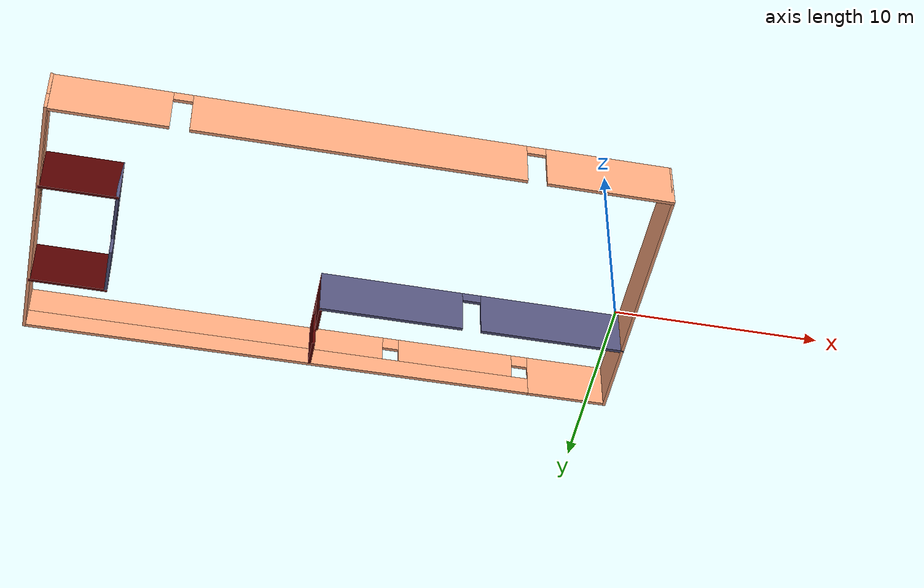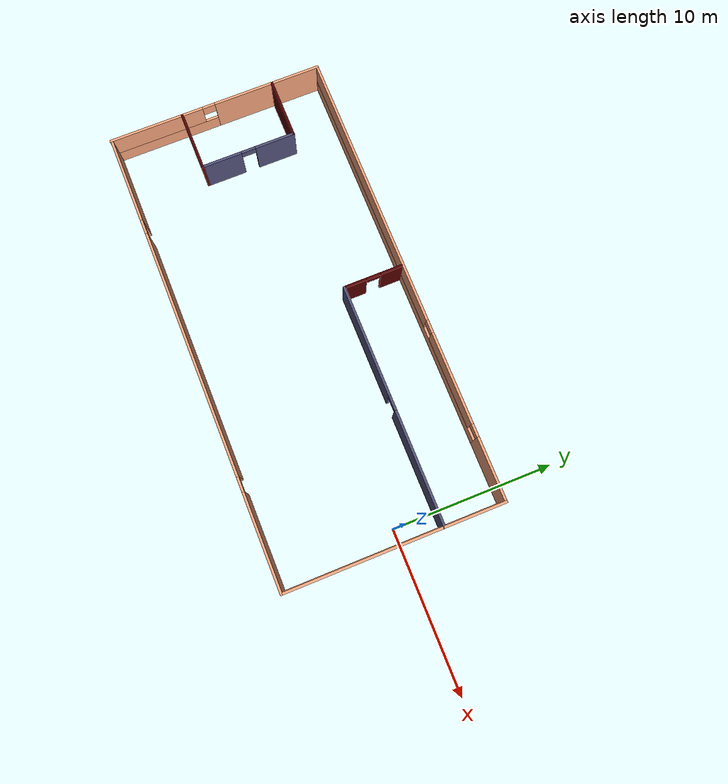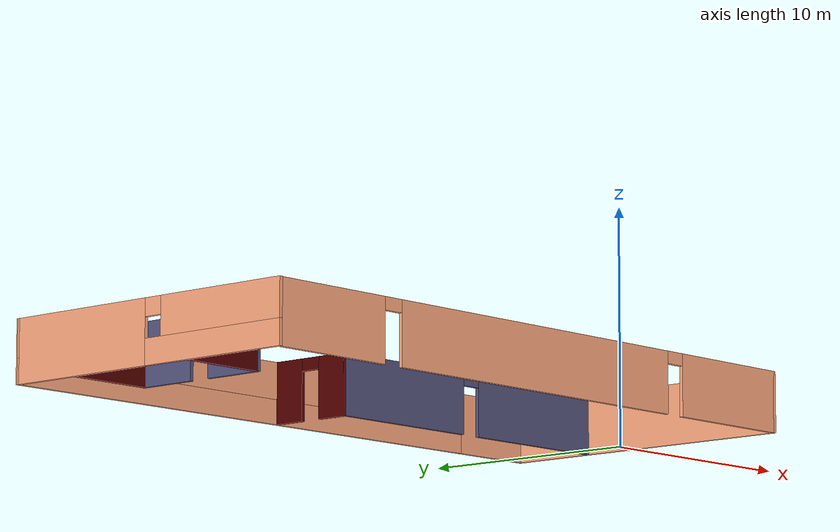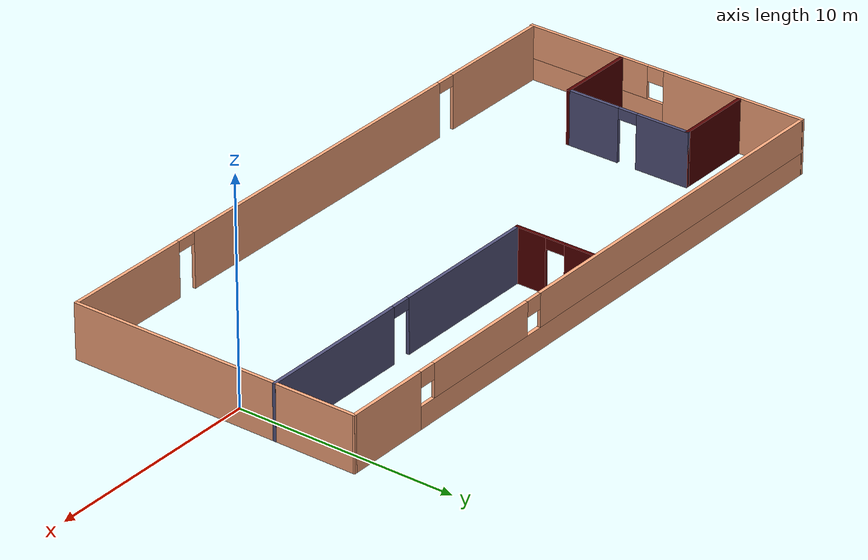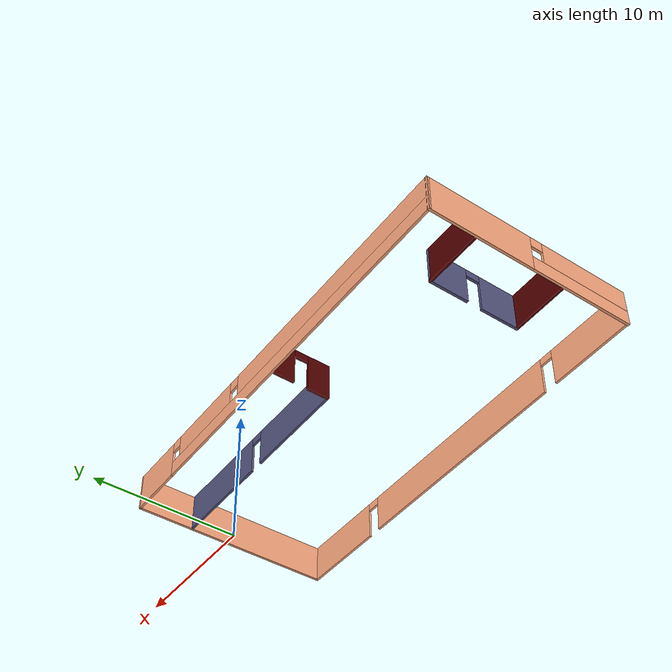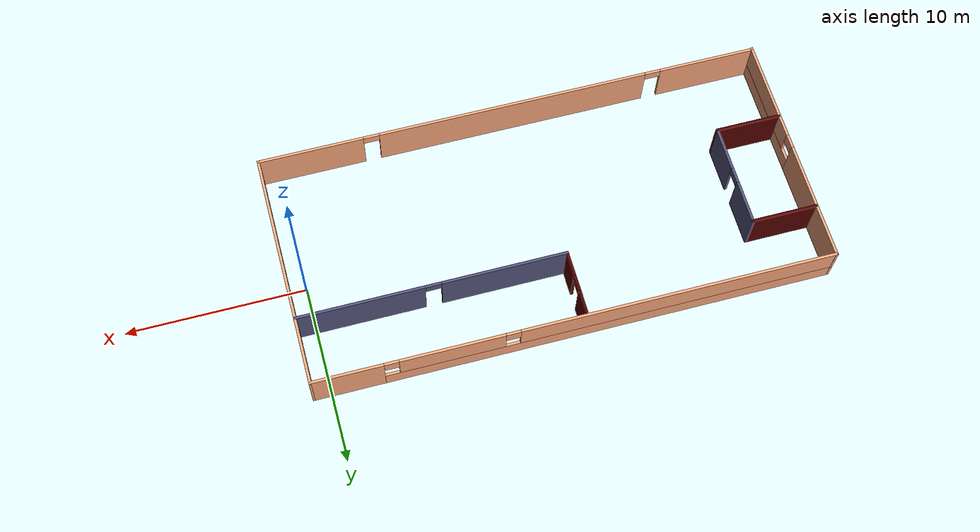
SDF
<?xml version='1.0'?>
<sdf version='1.6'>
  <model name='world'>
    <pose frame=''>-13.404 -0.44518 0 0 -0 0</pose>
    <link name='Wall_0'>
      <pose frame=''>-14.3658 -5.2e-05 0 0 0 -1.5708</pose>
      <visual name='Wall_0_Visual_0'>
        <pose frame=''>-3.37995 0 1.25 0 -0 0</pose>
        <geometry>
          <box>
            <size>6.82101 0.15 2.5</size>
          </box>
        </geometry>
        <material>
          <script>
            <uri>file://media/materials/scripts/gazebo.material</uri>
            <name>Gazebo/Grey</name>
          </script>
          <ambient>1 0.666667 0.498039 1</ambient>
        </material>
        <meta>
          <layer>0</layer>
        </meta>
      </visual>
      <collision name='Wall_0_Collision_0'>
        <geometry>
          <box>
            <size>6.82101 0.15 2.5</size>
          </box>
        </geometry>
        <pose frame=''>-3.37995 0 1.25 0 -0 0</pose>
      </collision>
      <visual name='Wall_0_Visual_1'>
        <pose frame=''>3.41051 0 0.5 0 -0 0</pose>
        <geometry>
          <box>
            <size>6.7599 0.15 1</size>
          </box>
        </geometry>
        <material>
          <script>
            <uri>file://media/materials/scripts/gazebo.material</uri>
            <name>Gazebo/Grey</name>
          </script>
          <ambient>1 0.666667 0.498039 1</ambient>
        </material>
        <meta>
          <layer>0</layer>
        </meta>
      </visual>
      <collision name='Wall_0_Collision_1'>
        <geometry>
          <box>
            <size>6.7599 0.15 1</size>
          </box>
        </geometry>
        <pose frame=''>3.41051 0 0.5 0 -0 0</pose>
      </collision>
      <visual name='Wall_0_Visual_2'>
        <pose frame=''>3.81051 0 1.75 0 -0 0</pose>
        <geometry>
          <box>
            <size>5.9599 0.15 1.5</size>
          </box>
        </geometry>
        <material>
          <script>
            <uri>file://media/materials/scripts/gazebo.material</uri>
            <name>Gazebo/Grey</name>
          </script>
          <ambient>1 0.666667 0.498039 1</ambient>
        </material>
        <meta>
          <layer>0</layer>
        </meta>
      </visual>
      <collision name='Wall_0_Collision_2'>
        <geometry>
          <box>
            <size>5.9599 0.15 1.5</size>
          </box>
        </geometry>
        <pose frame=''>3.81051 0 1.75 0 -0 0</pose>
      </collision>
      <visual name='Wall_0_Visual_3'>
        <pose frame=''>0.430559 0 2.15 0 -0 0</pose>
        <geometry>
          <box>
            <size>0.8 0.15 0.7</size>
          </box>
        </geometry>
        <material>
          <script>
            <uri>file://media/materials/scripts/gazebo.material</uri>
            <name>Gazebo/Grey</name>
          </script>
          <ambient>1 0.666667 0.498039 1</ambient>
        </material>
        <meta>
          <layer>0</layer>
        </meta>
      </visual>
      <collision name='Wall_0_Collision_3'>
        <geometry>
          <box>
            <size>0.8 0.15 0.7</size>
          </box>
        </geometry>
        <pose frame=''>0.430559 0 2.15 0 -0 0</pose>
      </collision>
    </link>
    <link name='Wall_1'>
      <pose frame=''>0.01873 -6.67505 0 0 -0 0</pose>
      <visual name='Wall_1_Visual_0'>
        <pose frame=''>-11.6433 0 1.25 0 -0 0</pose>
        <geometry>
          <box>
            <size>5.55161 0.15 2.5</size>
          </box>
        </geometry>
        <material>
          <script>
            <uri>file://media/materials/scripts/gazebo.material</uri>
            <name>Gazebo/Grey</name>
          </script>
          <ambient>1 0.666667 0.498039 1</ambient>
        </material>
        <meta>
          <layer>0</layer>
        </meta>
      </visual>
      <collision name='Wall_1_Collision_0'>
        <geometry>
          <box>
            <size>5.55161 0.15 2.5</size>
          </box>
        </geometry>
        <pose frame=''>-11.6433 0 1.25 0 -0 0</pose>
      </collision>
      <visual name='Wall_1_Visual_1'>
        <pose frame=''>-0.227346 0 1.25 0 -0 0</pose>
        <geometry>
          <box>
            <size>15.4803 0.15 2.5</size>
          </box>
        </geometry>
        <material>
          <script>
            <uri>file://media/materials/scripts/gazebo.material</uri>
            <name>Gazebo/Grey</name>
          </script>
          <ambient>1 0.666667 0.498039 1</ambient>
        </material>
        <meta>
          <layer>0</layer>
        </meta>
      </visual>
      <collision name='Wall_1_Collision_1'>
        <geometry>
          <box>
            <size>15.4803 0.15 2.5</size>
          </box>
        </geometry>
        <pose frame=''>-0.227346 0 1.25 0 -0 0</pose>
      </collision>
      <visual name='Wall_1_Visual_2'>
        <pose frame=''>11.4159 0 1.25 0 -0 0</pose>
        <geometry>
          <box>
            <size>6.00631 0.15 2.5</size>
          </box>
        </geometry>
        <material>
          <script>
            <uri>file://media/materials/scripts/gazebo.material</uri>
            <name>Gazebo/Grey</name>
          </script>
          <ambient>1 0.666667 0.498039 1</ambient>
        </material>
        <meta>
          <layer>0</layer>
        </meta>
      </visual>
      <collision name='Wall_1_Collision_2'>
        <geometry>
          <box>
            <size>6.00631 0.15 2.5</size>
          </box>
        </geometry>
        <pose frame=''>11.4159 0 1.25 0 -0 0</pose>
      </collision>
      <visual name='Wall_1_Visual_3'>
        <pose frame=''>-8.41748 0 2.25 0 -0 0</pose>
        <geometry>
          <box>
            <size>0.9 0.15 0.5</size>
          </box>
        </geometry>
        <material>
          <script>
            <uri>file://media/materials/scripts/gazebo.material</uri>
            <name>Gazebo/Grey</name>
          </script>
          <ambient>1 0.666667 0.498039 1</ambient>
        </material>
        <meta>
          <layer>0</layer>
        </meta>
      </visual>
      <collision name='Wall_1_Collision_3'>
        <geometry>
          <box>
            <size>0.9 0.15 0.5</size>
          </box>
        </geometry>
        <pose frame=''>-8.41748 0 2.25 0 -0 0</pose>
      </collision>
      <visual name='Wall_1_Visual_4'>
        <pose frame=''>7.96278 0 2.25 0 -0 0</pose>
        <geometry>
          <box>
            <size>0.9 0.15 0.5</size>
          </box>
        </geometry>
        <material>
          <script>
            <uri>file://media/materials/scripts/gazebo.material</uri>
            <name>Gazebo/Grey</name>
          </script>
          <ambient>1 0.666667 0.498039 1</ambient>
        </material>
        <meta>
          <layer>0</layer>
        </meta>
      </visual>
      <collision name='Wall_1_Collision_4'>
        <geometry>
          <box>
            <size>0.9 0.15 0.5</size>
          </box>
        </geometry>
        <pose frame=''>7.96278 0 2.25 0 -0 0</pose>
      </collision>
    </link>
    <link name='Wall_10'>
      <collision name='Wall_10_Collision'>
        <geometry>
          <box>
            <size>3.75 0.15 2.5</size>
          </box>
        </geometry>
        <pose frame=''>0 0 1.25 0 -0 0</pose>
      </collision>
      <visual name='Wall_10_Visual'>
        <pose frame=''>0 0 1.25 0 -0 0</pose>
        <geometry>
          <box>
            <size>3.75 0.15 2.5</size>
          </box>
        </geometry>
        <material>
          <script>
            <uri>file://media/materials/scripts/gazebo.material</uri>
            <name>Gazebo/Grey</name>
          </script>
          <ambient>0.333333 0 0 1</ambient>
        </material>
        <meta>
          <layer>0</layer>
        </meta>
      </visual>
      <pose frame=''>-12.5171 -2.13139 0 0 -0 3.14159</pose>
    </link>
    <link name='Wall_12'>
      <pose frame=''>-0.484079 4.76658 0 0 0 -1.5708</pose>
      <visual name='Wall_12_Visual_0'>
        <pose frame=''>-1.18192 0 1.25 0 -0 0</pose>
        <geometry>
          <box>
            <size>1.38617 0.15 2.5</size>
          </box>
        </geometry>
        <material>
          <script>
            <uri>file://media/materials/scripts/gazebo.material</uri>
            <name>Gazebo/Grey</name>
          </script>
          <ambient>0.333333 0 0 1</ambient>
        </material>
        <meta>
          <layer>0</layer>
        </meta>
      </visual>
      <collision name='Wall_12_Collision_0'>
        <geometry>
          <box>
            <size>1.38617 0.15 2.5</size>
          </box>
        </geometry>
        <pose frame=''>-1.18192 0 1.25 0 -0 0</pose>
      </collision>
      <visual name='Wall_12_Visual_1'>
        <pose frame=''>1.14308 0 1.25 0 -0 0</pose>
        <geometry>
          <box>
            <size>1.46383 0.15 2.5</size>
          </box>
        </geometry>
        <material>
          <script>
            <uri>file://media/materials/scripts/gazebo.material</uri>
            <name>Gazebo/Grey</name>
          </script>
          <ambient>0.333333 0 0 1</ambient>
        </material>
        <meta>
          <layer>0</layer>
        </meta>
      </visual>
      <collision name='Wall_12_Collision_1'>
        <geometry>
          <box>
            <size>1.46383 0.15 2.5</size>
          </box>
        </geometry>
        <pose frame=''>1.14308 0 1.25 0 -0 0</pose>
      </collision>
      <visual name='Wall_12_Visual_2'>
        <pose frame=''>-0.038833 0 2.25 0 -0 0</pose>
        <geometry>
          <box>
            <size>0.9 0.15 0.5</size>
          </box>
        </geometry>
        <material>
          <script>
            <uri>file://media/materials/scripts/gazebo.material</uri>
            <name>Gazebo/Grey</name>
          </script>
          <ambient>0.333333 0 0 1</ambient>
        </material>
        <meta>
          <layer>0</layer>
        </meta>
      </visual>
      <collision name='Wall_12_Collision_2'>
        <geometry>
          <box>
            <size>0.9 0.15 0.5</size>
          </box>
        </geometry>
        <pose frame=''>-0.038833 0 2.25 0 -0 0</pose>
      </collision>
    </link>
    <link name='Wall_13'>
      <pose frame=''>6.94092 2.96658 0 0 -0 0</pose>
      <visual name='Wall_13_Visual_0'>
        <pose frame=''>-4.00307 0 1.25 0 -0 0</pose>
        <geometry>
          <box>
            <size>6.99386 0.15 2.5</size>
          </box>
        </geometry>
        <material>
          <script>
            <uri>file://media/materials/scripts/gazebo.material</uri>
            <name>Gazebo/Grey</name>
          </script>
          <ambient>0.333333 0.333333 0.498039 1</ambient>
        </material>
        <meta>
          <layer>0</layer>
        </meta>
      </visual>
      <collision name='Wall_13_Collision_0'>
        <geometry>
          <box>
            <size>6.99386 0.15 2.5</size>
          </box>
        </geometry>
        <pose frame=''>-4.00307 0 1.25 0 -0 0</pose>
      </collision>
      <visual name='Wall_13_Visual_1'>
        <pose frame=''>3.94693 0 1.25 0 -0 0</pose>
        <geometry>
          <box>
            <size>7.10614 0.15 2.5</size>
          </box>
        </geometry>
        <material>
          <script>
            <uri>file://media/materials/scripts/gazebo.material</uri>
            <name>Gazebo/Grey</name>
          </script>
          <ambient>0.333333 0.333333 0.498039 1</ambient>
        </material>
        <meta>
          <layer>0</layer>
        </meta>
      </visual>
      <collision name='Wall_13_Collision_1'>
        <geometry>
          <box>
            <size>7.10614 0.15 2.5</size>
          </box>
        </geometry>
        <pose frame=''>3.94693 0 1.25 0 -0 0</pose>
      </collision>
      <visual name='Wall_13_Visual_2'>
        <pose frame=''>-0.056141 0 2.25 0 -0 0</pose>
        <geometry>
          <box>
            <size>0.9 0.15 0.5</size>
          </box>
        </geometry>
        <material>
          <script>
            <uri>file://media/materials/scripts/gazebo.material</uri>
            <name>Gazebo/Grey</name>
          </script>
          <ambient>0.333333 0.333333 0.498039 1</ambient>
        </material>
        <meta>
          <layer>0</layer>
        </meta>
      </visual>
      <collision name='Wall_13_Collision_2'>
        <geometry>
          <box>
            <size>0.9 0.15 0.5</size>
          </box>
        </geometry>
        <pose frame=''>-0.056141 0 2.25 0 -0 0</pose>
      </collision>
    </link>
    <link name='Wall_5'>
      <collision name='Wall_5_Collision'>
        <geometry>
          <box>
            <size>13.5 0.15 2.5</size>
          </box>
        </geometry>
        <pose frame=''>0 0 1.25 0 -0 0</pose>
      </collision>
      <visual name='Wall_5_Visual'>
        <pose frame=''>0 0 1.25 0 -0 0</pose>
        <geometry>
          <box>
            <size>13.5 0.15 2.5</size>
          </box>
        </geometry>
        <material>
          <script>
            <uri>file://media/materials/scripts/gazebo.material</uri>
            <name>Gazebo/Grey</name>
          </script>
          <ambient>1 0.666667 0.498039 1</ambient>
        </material>
        <meta>
          <layer>0</layer>
        </meta>
      </visual>
      <pose frame=''>14.3628 -5.2e-05 0 0 -0 1.5708</pose>
    </link>
    <link name='Wall_6'>
      <pose frame=''>-0.001497 6.69518 0 0 -0 3.14018</pose>
      <visual name='Wall_6_Visual_0'>
        <pose frame=''>-12.4548 0 1.25 0 -0 0</pose>
        <geometry>
          <box>
            <size>3.96903 0.15 2.5</size>
          </box>
        </geometry>
        <material>
          <script>
            <uri>file://media/materials/scripts/gazebo.material</uri>
            <name>Gazebo/Grey</name>
          </script>
          <ambient>1 0.666667 0.498039 1</ambient>
        </material>
        <meta>
          <layer>0</layer>
        </meta>
      </visual>
      <collision name='Wall_6_Collision_0'>
        <geometry>
          <box>
            <size>3.96903 0.15 2.5</size>
          </box>
        </geometry>
        <pose frame=''>-12.4548 0 1.25 0 -0 0</pose>
      </collision>
      <visual name='Wall_6_Visual_1'>
        <pose frame=''>1.98451 0 0.5 0 -0 0</pose>
        <geometry>
          <box>
            <size>24.9096 0.15 1</size>
          </box>
        </geometry>
        <material>
          <script>
            <uri>file://media/materials/scripts/gazebo.material</uri>
            <name>Gazebo/Grey</name>
          </script>
          <ambient>1 0.666667 0.498039 1</ambient>
        </material>
        <meta>
          <layer>0</layer>
        </meta>
      </visual>
      <collision name='Wall_6_Collision_1'>
        <geometry>
          <box>
            <size>24.9096 0.15 1</size>
          </box>
        </geometry>
        <pose frame=''>1.98451 0 0.5 0 -0 0</pose>
      </collision>
      <visual name='Wall_6_Visual_2'>
        <pose frame=''>-6.79779 0 1.75 0 -0 0</pose>
        <geometry>
          <box>
            <size>5.74502 0.15 1.5</size>
          </box>
        </geometry>
        <material>
          <script>
            <uri>file://media/materials/scripts/gazebo.material</uri>
            <name>Gazebo/Grey</name>
          </script>
          <ambient>1 0.666667 0.498039 1</ambient>
        </material>
        <meta>
          <layer>0</layer>
        </meta>
      </visual>
      <collision name='Wall_6_Collision_2'>
        <geometry>
          <box>
            <size>5.74502 0.15 1.5</size>
          </box>
        </geometry>
        <pose frame=''>-6.79779 0 1.75 0 -0 0</pose>
      </collision>
      <visual name='Wall_6_Visual_3'>
        <pose frame=''>5.65702 0 1.75 0 -0 0</pose>
        <geometry>
          <box>
            <size>17.5646 0.15 1.5</size>
          </box>
        </geometry>
        <material>
          <script>
            <uri>file://media/materials/scripts/gazebo.material</uri>
            <name>Gazebo/Grey</name>
          </script>
          <ambient>1 0.666667 0.498039 1</ambient>
        </material>
        <meta>
          <layer>0</layer>
        </meta>
      </visual>
      <collision name='Wall_6_Collision_3'>
        <geometry>
          <box>
            <size>17.5646 0.15 1.5</size>
          </box>
        </geometry>
        <pose frame=''>5.65702 0 1.75 0 -0 0</pose>
      </collision>
      <visual name='Wall_6_Visual_4'>
        <pose frame=''>-10.0703 0 2.15 0 -0 0</pose>
        <geometry>
          <box>
            <size>0.8 0.15 0.7</size>
          </box>
        </geometry>
        <material>
          <script>
            <uri>file://media/materials/scripts/gazebo.material</uri>
            <name>Gazebo/Grey</name>
          </script>
          <ambient>1 0.666667 0.498039 1</ambient>
        </material>
        <meta>
          <layer>0</layer>
        </meta>
      </visual>
      <collision name='Wall_6_Collision_4'>
        <geometry>
          <box>
            <size>0.8 0.15 0.7</size>
          </box>
        </geometry>
        <pose frame=''>-10.0703 0 2.15 0 -0 0</pose>
      </collision>
      <visual name='Wall_6_Visual_5'>
        <pose frame=''>-3.52528 0 2.15 0 -0 0</pose>
        <geometry>
          <box>
            <size>0.8 0.15 0.7</size>
          </box>
        </geometry>
        <material>
          <script>
            <uri>file://media/materials/scripts/gazebo.material</uri>
            <name>Gazebo/Grey</name>
          </script>
          <ambient>1 0.666667 0.498039 1</ambient>
        </material>
        <meta>
          <layer>0</layer>
        </meta>
      </visual>
      <collision name='Wall_6_Collision_5'>
        <geometry>
          <box>
            <size>0.8 0.15 0.7</size>
          </box>
        </geometry>
        <pose frame=''>-3.52528 0 2.15 0 -0 0</pose>
      </collision>
    </link>
    <link name='Wall_8'>
      <collision name='Wall_8_Collision'>
        <geometry>
          <box>
            <size>3.75 0.15 2.5</size>
          </box>
        </geometry>
        <pose frame=''>0 0 1.25 0 -0 0</pose>
      </collision>
      <visual name='Wall_8_Visual'>
        <pose frame=''>0 0 1.25 0 -0 0</pose>
        <geometry>
          <box>
            <size>3.75 0.15 2.5</size>
          </box>
        </geometry>
        <material>
          <script>
            <uri>file://media/materials/scripts/gazebo.material</uri>
            <name>Gazebo/Grey</name>
          </script>
          <ambient>0.333333 0 0 1</ambient>
        </material>
        <meta>
          <layer>0</layer>
        </meta>
      </visual>
      <pose frame=''>-12.5171 3.71861 0 0 -0 0</pose>
    </link>
    <link name='Wall_9'>
      <pose frame=''>-10.7171 0.793607 0 0 0 -1.5708</pose>
      <visual name='Wall_9_Visual_0'>
        <pose frame=''>-1.73202 0 1.25 0 -0 0</pose>
        <geometry>
          <box>
            <size>2.53597 0.15 2.5</size>
          </box>
        </geometry>
        <material>
          <script>
            <uri>file://media/materials/scripts/gazebo.material</uri>
            <name>Gazebo/Grey</name>
          </script>
          <ambient>0.333333 0.333333 0.498039 1</ambient>
        </material>
        <meta>
          <layer>0</layer>
        </meta>
      </visual>
      <collision name='Wall_9_Collision_0'>
        <geometry>
          <box>
            <size>2.53597 0.15 2.5</size>
          </box>
        </geometry>
        <pose frame=''>-1.73202 0 1.25 0 -0 0</pose>
      </collision>
      <visual name='Wall_9_Visual_1'>
        <pose frame=''>1.71799 0 1.25 0 -0 0</pose>
        <geometry>
          <box>
            <size>2.56403 0.15 2.5</size>
          </box>
        </geometry>
        <material>
          <script>
            <uri>file://media/materials/scripts/gazebo.material</uri>
            <name>Gazebo/Grey</name>
          </script>
          <ambient>0.333333 0.333333 0.498039 1</ambient>
        </material>
        <meta>
          <layer>0</layer>
        </meta>
      </visual>
      <collision name='Wall_9_Collision_1'>
        <geometry>
          <box>
            <size>2.56403 0.15 2.5</size>
          </box>
        </geometry>
        <pose frame=''>1.71799 0 1.25 0 -0 0</pose>
      </collision>
      <visual name='Wall_9_Visual_2'>
        <pose frame=''>-0.014031 0 2.25 0 -0 0</pose>
        <geometry>
          <box>
            <size>0.9 0.15 0.5</size>
          </box>
        </geometry>
        <material>
          <script>
            <uri>file://media/materials/scripts/gazebo.material</uri>
            <name>Gazebo/Grey</name>
          </script>
          <ambient>0.333333 0.333333 0.498039 1</ambient>
        </material>
        <meta>
          <layer>0</layer>
        </meta>
      </visual>
      <collision name='Wall_9_Collision_2'>
        <geometry>
          <box>
            <size>0.9 0.15 0.5</size>
          </box>
        </geometry>
        <pose frame=''>-0.014031 0 2.25 0 -0 0</pose>
      </collision>
    </link>
    <static>1</static>
  </model>
</sdf>
